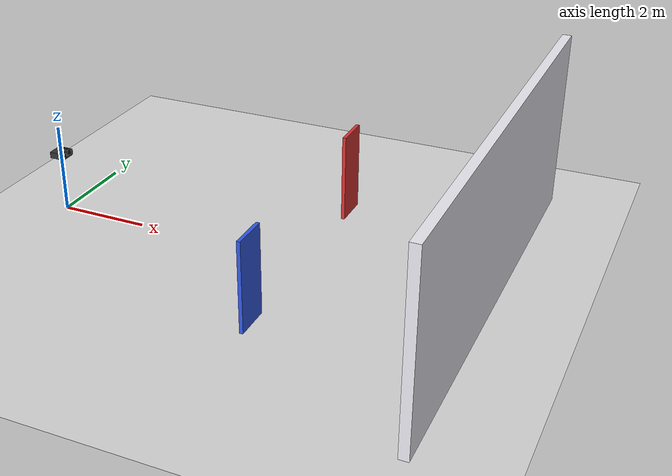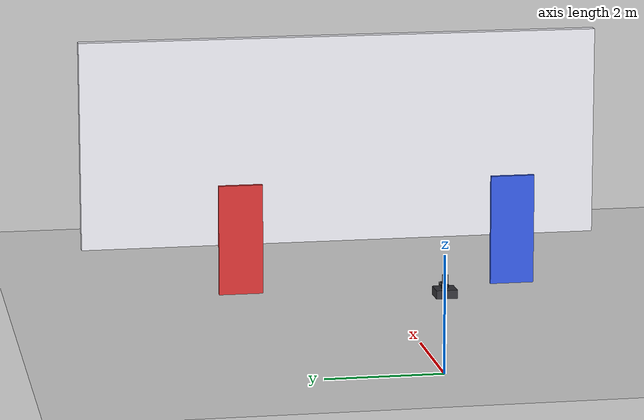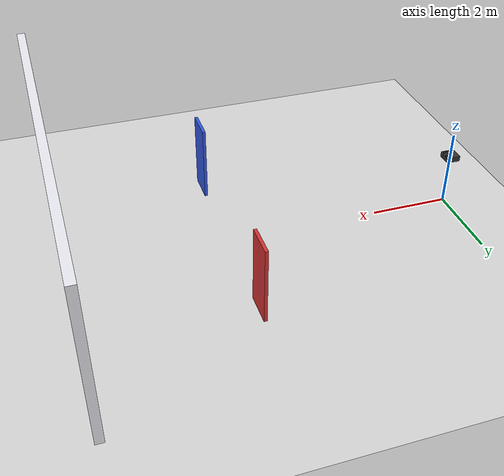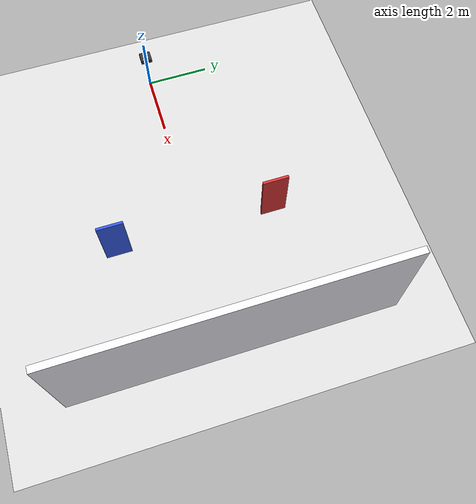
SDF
<sdf version="1.9">
 <world name="default">
  <physics name="1ms" type="ode">
   <max_step_size>0.001</max_step_size>
   <real_time_factor>1.0</real_time_factor>
  </physics>
  <plugin filename="gz-sim-physics-system" name="gz::sim::systems::Physics"/>
  <plugin filename="gz-sim-user-commands-system" name="gz::sim::systems::UserCommands"/>
  <plugin filename="gz-sim-scene-broadcaster-system" name="gz::sim::systems::SceneBroadcaster"/>
  <plugin filename="gz-sim-sensors-system" name="gz::sim::systems::Sensors">
   <render_engine>ogre2</render_engine>
  </plugin>
  <scene><ambient>0.75 0.75 0.75 1</ambient><background>0.92 0.94 0.98 1</background><grid>true</grid></scene>
  <light type="directional" name="sun">
   <pose>0 0 12 0 0 0</pose>
   <diffuse>0.95 0.95 0.95 1</diffuse>
   <specular>0.3 0.3 0.3 1</specular>
   <attenuation>
    <range>1000</range>
    <constant>0.9</constant>
    <linear>0.01</linear>
    <quadratic>0.001</quadratic>
   </attenuation>
   <direction>-0.4 0.2 -0.9</direction>
  </light>
  <model name="ground_plane">
   <static>true</static>
   <link name="link">
    <collision name="collision">
     <geometry><plane><normal>0 0 1</normal><size>30 30</size></plane></geometry>
    </collision>
    <visual name="visual">
     <geometry><plane><normal>0 0 1</normal><size>30 30</size></plane></geometry>
     <material>
      <ambient>0.85 0.85 0.85 1</ambient>
      <diffuse>0.85 0.85 0.85 1</diffuse>
      <specular>0.1 0.1 0.1 1</specular>
     </material>
    </visual>
   </link>
  </model>
  <model name="backdrop_wall">
   <static>true</static>
   <pose>10 0 2 0 0 0</pose>
   <link name="link">
    <collision name="collision"><geometry><box><size>0.2 10 4</size></box></geometry></collision>
    <visual name="visual">
     <geometry><box><size>0.2 10 4</size></box></geometry>
     <material><ambient>0.93 0.93 0.96 1</ambient><diffuse>0.93 0.93 0.96 1</diffuse></material>
    </visual>
   </link>
  </model>
  <model name="left_marker">
   <static>true</static>
   <pose>6.0 2.5 1.0 0 0 0</pose>
   <link name="link">
    <visual name="visual">
     <geometry><box><size>0.08 0.8 2.0</size></box></geometry>
     <material><ambient>0.85 0.2 0.2 1</ambient><diffuse>0.85 0.2 0.2 1</diffuse></material>
    </visual>
   </link>
  </model>
  <model name="right_marker">
   <static>true</static>
   <pose>6.0 -2.5 1.0 0 0 0</pose>
   <link name="link">
    <visual name="visual">
     <geometry><box><size>0.08 0.8 2.0</size></box></geometry>
     <material><ambient>0.2 0.35 0.9 1</ambient><diffuse>0.2 0.35 0.9 1</diffuse></material>
    </visual>
   </link>
  </model>
  <model name="pantilt">
   <pose>0 0 1.45 0 0 0</pose>
   <link name="base_link">
    <inertial><mass>5.0</mass><inertia><ixx>0.06</ixx><iyy>0.06</iyy><izz>0.06</izz></inertia></inertial>
    <collision name="collision">
     <geometry><box><size>0.35 0.35 0.14</size></box></geometry>
     <pose>0 0 -0.07 0 0 0</pose>
    </collision>
    <visual name="visual">
     <geometry><box><size>0.35 0.35 0.14</size></box></geometry>
     <pose>0 0 -0.07 0 0 0</pose>
     <material><ambient>0.2 0.2 0.22 1</ambient><diffuse>0.2 0.2 0.22 1</diffuse></material>
    </visual>
   </link>
   <link name="pan_link">
    <inertial><mass>1.0</mass><inertia><ixx>0.01</ixx><iyy>0.01</iyy><izz>0.01</izz></inertia></inertial>
    <collision name="mast_collision">
     <geometry><cylinder><radius>0.05</radius><length>0.22</length></cylinder></geometry>
     <pose>0 0 0.11 0 0 0</pose>
    </collision>
    <visual name="mast_visual">
     <geometry><cylinder><radius>0.05</radius><length>0.22</length></cylinder></geometry>
     <pose>0 0 0.11 0 0 0</pose>
     <material><ambient>0.3 0.3 0.34 1</ambient><diffuse>0.3 0.3 0.34 1</diffuse></material>
    </visual>
   </link>
   <link name="tilt_link">
    <inertial><mass>0.8</mass><inertia><ixx>0.008</ixx><iyy>0.008</iyy><izz>0.008</izz></inertia></inertial>
    <collision name="camera_body_collision">
     <geometry><box><size>0.22 0.12 0.12</size></box></geometry>
     <pose>0.11 0 0 0 0 0</pose>
    </collision>
    <visual name="camera_body_visual">
     <geometry><box><size>0.22 0.12 0.12</size></box></geometry>
     <pose>0.11 0 0 0 0 0</pose>
     <material><ambient>0.1 0.1 0.1 1</ambient><diffuse>0.1 0.1 0.1 1</diffuse></material>
    </visual>
    <sensor name="camera" type="camera">
     <pose>0.18 0 0 0 0 0</pose>
     <always_on>1</always_on>
     <update_rate>20</update_rate>
     <visualize>true</visualize>
     <camera>
      <horizontal_fov>1.047</horizontal_fov>
      <image><width>640</width><height>480</height><format>R8G8B8</format></image>
      <clip><near>0.1</near><far>40</far></clip>
     </camera>
    </sensor>
   </link>
   <joint name="world_fixed" type="fixed"><parent>world</parent><child>base_link</child></joint>
   <joint name="pan_joint" type="revolute">
    <parent>base_link</parent>
    <child>pan_link</child>
    <axis>
     <xyz>0 0 1</xyz>
     <limit><lower>-3.14159</lower><upper>3.14159</upper></limit>
     <dynamics><damping>0.5</damping></dynamics>
    </axis>
   </joint>
   <joint name="tilt_joint" type="revolute">
    <pose>0 0 0.22 0 0 0</pose>
    <parent>pan_link</parent>
    <child>tilt_link</child>
    <axis>
     <xyz>0 1 0</xyz>
     <limit><lower>-1.2</lower><upper>1.2</upper></limit>
     <dynamics><damping>0.4</damping></dynamics>
    </axis>
   </joint>
   <plugin filename="gz-sim-joint-position-controller-system" name="gz::sim::systems::JointPositionController">
    <joint_name>pan_joint</joint_name>
    <p_gain>0.8</p_gain>
   </plugin>
   <plugin filename="gz-sim-joint-position-controller-system" name="gz::sim::systems::JointPositionController">
    <joint_name>tilt_joint</joint_name>
    <p_gain>0.8</p_gain>
   </plugin>
  </model>
 </world>
</sdf>
